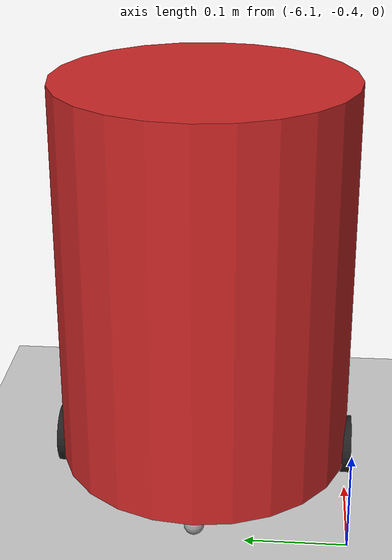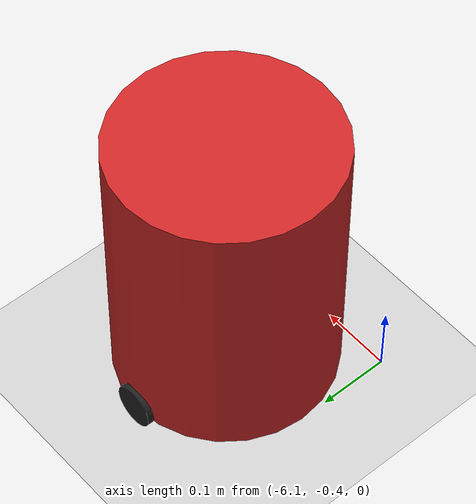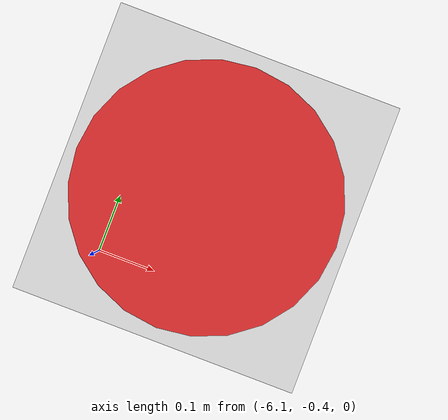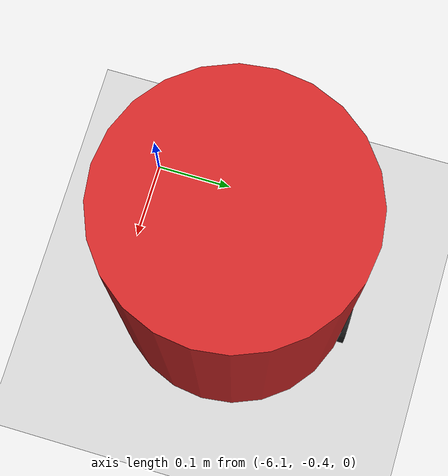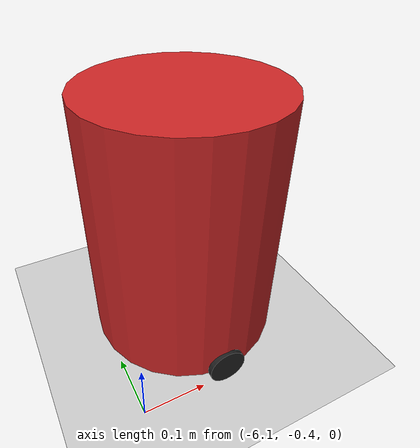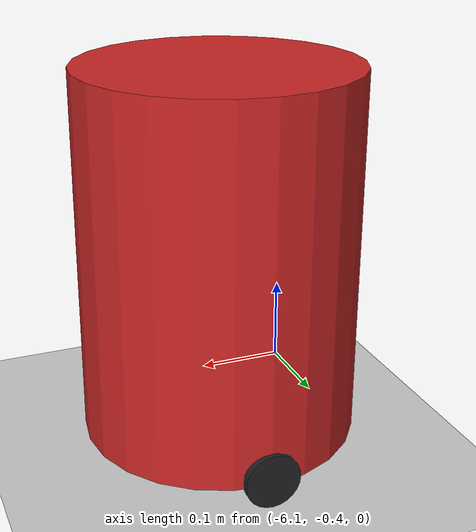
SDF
<sdf version="1.6">
 <world name="default">
  <model name="ground_plane">
   <static>1</static>
   <link name="ground_link">
    <collision name="collision">
     <geometry><plane><normal>0 0 1</normal><size>100 100</size></plane></geometry>
     <surface><friction><ode><mu>100</mu><mu2>50</mu2></ode></friction></surface>
    </collision>
    <visual name="visual">
     <cast_shadows>0</cast_shadows>
     <geometry><plane><normal>0 0 1</normal><size>100 100</size></plane></geometry>
     <material>
      <script><uri>file://media/materials/scripts/gazebo.material</uri><name>Gazebo/Grey</name></script>
     </material>
    </visual>
   </link>
  </model>
  <model name="CleanerBot_6">
   <link name="link_0">
    <inertial>
     <mass>1</mass>
     <inertia><ixx>0.145833</ixx><ixy>0</ixy><ixz>0</ixz><iyy>0.145833</iyy><iyz>0</iyz><izz>0.125</izz></inertia>
    </inertial>
    <pose>0 0 0.2001 0 -0 0</pose>
    <visual name="visual">
     <geometry><cylinder><radius>0.15</radius><length>0.4</length></cylinder></geometry>
     <material>
      <lighting>1</lighting>
      <script><uri>file://media/materials/scripts/gazebo.material</uri><name>Gazebo/Red</name></script>
      <shader type="pixel"><normal_map>__default__</normal_map></shader>
      <ambient>0.8 0 0 1</ambient>
      <diffuse>0.7 0.7 0.7 1</diffuse>
      <specular>0.01 0.01 0.01 1</specular>
      <emissive>0 0 0 1</emissive>
     </material>
    </visual>
    <collision name="collision">
     <geometry><cylinder><radius>0.15</radius><length>0.4</length></cylinder></geometry>
     <surface>
      <friction>
       <ode><mu>1</mu><mu2>1</mu2><fdir1>0 0 0</fdir1><slip1>0</slip1><slip2>0</slip2></ode>
       <torsional>
        <coefficient>1</coefficient>
        <patch_radius>0</patch_radius>
        <surface_radius>0</surface_radius>
        <use_patch_radius>1</use_patch_radius>
        <ode><slip>0</slip></ode>
       </torsional>
      </friction>
      <bounce><restitution_coefficient>0</restitution_coefficient><threshold>1e+06</threshold></bounce>
      <contact>
       <collide_without_contact>0</collide_without_contact>
       <collide_without_contact_bitmask>1</collide_without_contact_bitmask>
       <collide_bitmask>1</collide_bitmask>
       <ode>
        <soft_cfm>0</soft_cfm>
        <soft_erp>0.2</soft_erp>
        <kp>1e+13</kp>
        <kd>1</kd>
        <max_vel>0.01</max_vel>
        <min_depth>0</min_depth>
       </ode>
       <bullet>
        <split_impulse>1</split_impulse>
        <split_impulse_penetration_threshold>-0.01</split_impulse_penetration_threshold>
        <soft_cfm>0</soft_cfm>
        <soft_erp>0.2</soft_erp>
        <kp>1e+13</kp>
        <kd>1</kd>
       </bullet>
      </contact>
     </surface>
    </collision>
   </link>
   <link name="link_1">
    <inertial>
     <mass>1</mass>
     <inertia><ixx>0.145833</ixx><ixy>0</ixy><ixz>0</ixz><iyy>0.145833</iyy><iyz>0</iyz><izz>0.125</izz></inertia>
    </inertial>
    <pose>0 0.15 0.007 1.5707 -0 0</pose>
    <visual name="visual">
     <geometry><cylinder><radius>0.03</radius><length>0.01</length></cylinder></geometry>
     <material>
      <lighting>1</lighting>
      <script><uri>file://media/materials/scripts/gazebo.material</uri><name>Gazebo/Black</name></script>
      <shader type="pixel"><normal_map>__default__</normal_map></shader>
      <ambient>0 0 0.8 1</ambient>
      <diffuse>0.7 0.7 0.7 1</diffuse>
      <specular>0.01 0.01 0.01 1</specular>
      <emissive>0 0 0 1</emissive>
     </material>
    </visual>
    <collision name="collision">
     <geometry><cylinder><radius>0.03</radius><length>0.01</length></cylinder></geometry>
     <surface>
      <friction>
       <ode><mu>1</mu><mu2>1</mu2><fdir1>0 0 0</fdir1><slip1>0</slip1><slip2>0</slip2></ode>
       <torsional>
        <coefficient>1</coefficient>
        <patch_radius>0</patch_radius>
        <surface_radius>0</surface_radius>
        <use_patch_radius>1</use_patch_radius>
        <ode><slip>0</slip></ode>
       </torsional>
      </friction>
      <bounce><restitution_coefficient>0</restitution_coefficient><threshold>1e+06</threshold></bounce>
      <contact>
       <collide_without_contact>0</collide_without_contact>
       <collide_without_contact_bitmask>1</collide_without_contact_bitmask>
       <collide_bitmask>1</collide_bitmask>
       <ode>
        <soft_cfm>0</soft_cfm>
        <soft_erp>0.2</soft_erp>
        <kp>1e+13</kp>
        <kd>1</kd>
        <max_vel>0.01</max_vel>
        <min_depth>0</min_depth>
       </ode>
       <bullet>
        <split_impulse>1</split_impulse>
        <split_impulse_penetration_threshold>-0.01</split_impulse_penetration_threshold>
        <soft_cfm>0</soft_cfm>
        <soft_erp>0.2</soft_erp>
        <kp>1e+13</kp>
        <kd>1</kd>
       </bullet>
      </contact>
     </surface>
    </collision>
   </link>
   <link name="link_1_clone">
    <inertial>
     <mass>1</mass>
     <inertia><ixx>0.145833</ixx><ixy>0</ixy><ixz>0</ixz><iyy>0.145833</iyy><iyz>0</iyz><izz>0.125</izz></inertia>
    </inertial>
    <pose>0 -0.15 0.007 1.5707 -0 0</pose>
    <visual name="visual">
     <geometry><cylinder><radius>0.03</radius><length>0.01</length></cylinder></geometry>
     <material>
      <lighting>1</lighting>
      <script><uri>file://media/materials/scripts/gazebo.material</uri><name>Gazebo/Black</name></script>
      <shader type="pixel"><normal_map>__default__</normal_map></shader>
      <ambient>0 0 0.8 1</ambient>
      <diffuse>0.7 0.7 0.7 1</diffuse>
      <specular>0.01 0.01 0.01 1</specular>
      <emissive>0 0 0 1</emissive>
     </material>
    </visual>
    <collision name="collision">
     <geometry><cylinder><radius>0.03</radius><length>0.01</length></cylinder></geometry>
     <surface>
      <friction>
       <ode><mu>1</mu><mu2>1</mu2><fdir1>0 0 0</fdir1><slip1>0</slip1><slip2>0</slip2></ode>
       <torsional>
        <coefficient>1</coefficient>
        <patch_radius>0</patch_radius>
        <surface_radius>0</surface_radius>
        <use_patch_radius>1</use_patch_radius>
        <ode><slip>0</slip></ode>
       </torsional>
      </friction>
      <bounce><restitution_coefficient>0</restitution_coefficient><threshold>1e+06</threshold></bounce>
      <contact>
       <collide_without_contact>0</collide_without_contact>
       <collide_without_contact_bitmask>1</collide_without_contact_bitmask>
       <collide_bitmask>1</collide_bitmask>
       <ode>
        <soft_cfm>0</soft_cfm>
        <soft_erp>0.2</soft_erp>
        <kp>1e+13</kp>
        <kd>1</kd>
        <max_vel>0.01</max_vel>
        <min_depth>0</min_depth>
       </ode>
       <bullet>
        <split_impulse>1</split_impulse>
        <split_impulse_penetration_threshold>-0.01</split_impulse_penetration_threshold>
        <soft_cfm>0</soft_cfm>
        <soft_erp>0.2</soft_erp>
        <kp>1e+13</kp>
        <kd>1</kd>
       </bullet>
      </contact>
     </surface>
    </collision>
   </link>
   <link name="link_2">
    <inertial>
     <mass>1</mass>
     <inertia><ixx>0.1</ixx><ixy>0</ixy><ixz>0</ixz><iyy>0.1</iyy><iyz>0</iyz><izz>0.1</izz></inertia>
    </inertial>
    <pose>0.13 0 -0.013 0 -0 0</pose>
    <visual name="visual">
     <geometry><sphere><radius>0.01</radius></sphere></geometry>
     <material>
      <lighting>1</lighting>
      <script><uri>file://media/materials/scripts/gazebo.material</uri><name>Gazebo/Grey</name></script>
      <shader type="pixel"><normal_map>__default__</normal_map></shader>
      <ambient>0.3 0.3 0.3 1</ambient>
      <diffuse>0.7 0.7 0.7 1</diffuse>
      <specular>0.01 0.01 0.01 1</specular>
      <emissive>0 0 0 1</emissive>
     </material>
    </visual>
    <collision name="collision">
     <geometry><sphere><radius>0.01</radius></sphere></geometry>
     <surface>
      <friction>
       <ode><mu>0</mu><mu2>0</mu2><fdir1>0 0 0</fdir1><slip1>0</slip1><slip2>0</slip2></ode>
       <torsional>
        <coefficient>1</coefficient>
        <patch_radius>0</patch_radius>
        <surface_radius>0</surface_radius>
        <use_patch_radius>1</use_patch_radius>
        <ode><slip>0</slip></ode>
       </torsional>
      </friction>
      <bounce><restitution_coefficient>0</restitution_coefficient><threshold>1e+06</threshold></bounce>
      <contact>
       <collide_without_contact>0</collide_without_contact>
       <collide_without_contact_bitmask>1</collide_without_contact_bitmask>
       <collide_bitmask>1</collide_bitmask>
       <ode>
        <soft_cfm>0</soft_cfm>
        <soft_erp>0.2</soft_erp>
        <kp>1e+13</kp>
        <kd>1</kd>
        <max_vel>0.01</max_vel>
        <min_depth>0</min_depth>
       </ode>
       <bullet>
        <split_impulse>1</split_impulse>
        <split_impulse_penetration_threshold>-0.01</split_impulse_penetration_threshold>
        <soft_cfm>0</soft_cfm>
        <soft_erp>0.2</soft_erp>
        <kp>1e+13</kp>
        <kd>1</kd>
       </bullet>
      </contact>
     </surface>
    </collision>
   </link>
   <link name="link_2_clone">
    <inertial>
     <mass>1</mass>
     <inertia><ixx>0.1</ixx><ixy>0</ixy><ixz>0</ixz><iyy>0.1</iyy><iyz>0</iyz><izz>0.1</izz></inertia>
    </inertial>
    <pose>-0.13 0 -0.013 0 -0 0</pose>
    <visual name="visual">
     <geometry><sphere><radius>0.01</radius></sphere></geometry>
     <material>
      <lighting>1</lighting>
      <script><uri>file://media/materials/scripts/gazebo.material</uri><name>Gazebo/Grey</name></script>
      <shader type="pixel"><normal_map>__default__</normal_map></shader>
      <ambient>0.3 0.3 0.3 1</ambient>
      <diffuse>0.7 0.7 0.7 1</diffuse>
      <specular>0.01 0.01 0.01 1</specular>
      <emissive>0 0 0 1</emissive>
     </material>
    </visual>
    <collision name="collision">
     <geometry><sphere><radius>0.01</radius></sphere></geometry>
     <surface>
      <friction>
       <ode><mu>0</mu><mu2>0</mu2><fdir1>0 0 0</fdir1><slip1>0</slip1><slip2>0</slip2></ode>
       <torsional>
        <coefficient>1</coefficient>
        <patch_radius>0</patch_radius>
        <surface_radius>0</surface_radius>
        <use_patch_radius>1</use_patch_radius>
        <ode><slip>0</slip></ode>
       </torsional>
      </friction>
      <bounce><restitution_coefficient>0</restitution_coefficient><threshold>1e+06</threshold></bounce>
      <contact>
       <collide_without_contact>0</collide_without_contact>
       <collide_without_contact_bitmask>1</collide_without_contact_bitmask>
       <collide_bitmask>1</collide_bitmask>
       <ode>
        <soft_cfm>0</soft_cfm>
        <soft_erp>0.2</soft_erp>
        <kp>1e+13</kp>
        <kd>1</kd>
        <max_vel>0.01</max_vel>
        <min_depth>0</min_depth>
       </ode>
       <bullet>
        <split_impulse>1</split_impulse>
        <split_impulse_penetration_threshold>-0.01</split_impulse_penetration_threshold>
        <soft_cfm>0</soft_cfm>
        <soft_erp>0.2</soft_erp>
        <kp>1e+13</kp>
        <kd>1</kd>
       </bullet>
      </contact>
     </surface>
    </collision>
   </link>
   <joint name="link_0_JOINT_1" type="revolute">
    <parent>link_0</parent>
    <child>link_1_clone</child>
    <axis>
     <xyz>0 0 1</xyz>
     <limit>
      <lower>-1.79769e+308</lower>
      <upper>1.79769e+308</upper>
      <effort>-1</effort>
      <velocity>-1</velocity>
     </limit>
     <dynamics>
      <spring_reference>0</spring_reference>
      <spring_stiffness>0</spring_stiffness>
      <damping>0</damping>
     </dynamics>
     <use_parent_model_frame>0</use_parent_model_frame>
    </axis>
    <physics>
     <ode><limit><cfm>0</cfm><erp>0.2</erp></limit><suspension><cfm>0</cfm><erp>0.2</erp></suspension></ode>
    </physics>
   </joint>
   <joint name="link_0_JOINT_2" type="revolute">
    <parent>link_0</parent>
    <child>link_1</child>
    <axis>
     <xyz>0 0 1</xyz>
     <limit>
      <lower>-1.79769e+308</lower>
      <upper>1.79769e+308</upper>
      <effort>-1</effort>
      <velocity>-1</velocity>
     </limit>
     <dynamics>
      <spring_reference>0</spring_reference>
      <spring_stiffness>0</spring_stiffness>
      <damping>0</damping>
     </dynamics>
     <use_parent_model_frame>0</use_parent_model_frame>
    </axis>
    <physics>
     <ode><limit><cfm>0</cfm><erp>0.2</erp></limit><suspension><cfm>0</cfm><erp>0.2</erp></suspension></ode>
    </physics>
   </joint>
   <joint name="link_0_JOINT_4" type="fixed">
    <parent>link_0</parent>
    <child>link_2</child>
    <physics>
     <ode><limit><cfm>0</cfm><erp>0.2</erp></limit><suspension><cfm>0</cfm><erp>0.2</erp></suspension></ode>
    </physics>
   </joint>
   <joint name="link_0_JOINT_5" type="fixed">
    <parent>link_0</parent>
    <child>link_2_clone</child>
    <physics>
     <ode><limit><cfm>0</cfm><erp>0.2</erp></limit><suspension><cfm>0</cfm><erp>0.2</erp></suspension></ode>
    </physics>
   </joint>
   <static>0</static>
   <pose>-5.96101 -0.250986 0.022999 8e-06 -3e-06 -0.005067</pose>
  </model>
 </world>
</sdf>
